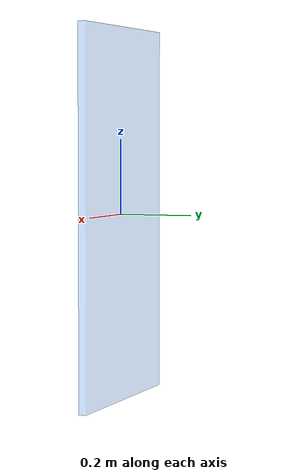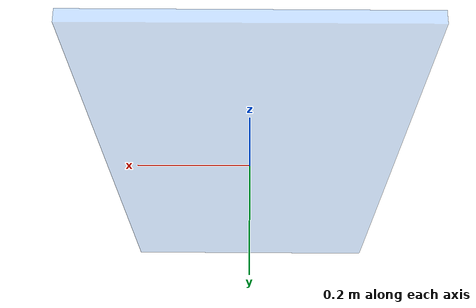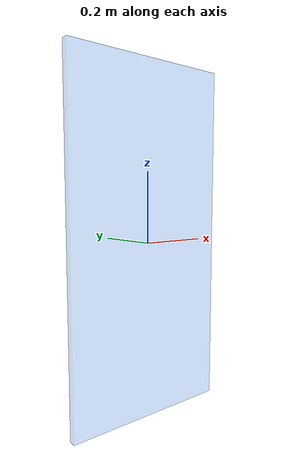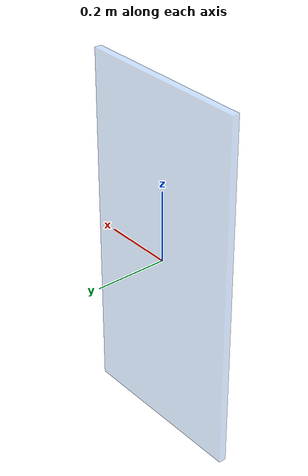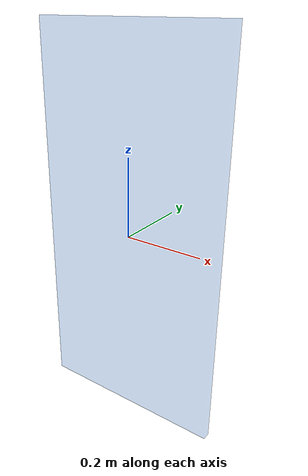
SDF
<?xml version="1.0"?>
<sdf version="1.6">
  <model name="transparent_wall_short">
    <static>true</static>
    <link name="wall">
      <collision name="collision">
        <geometry>
          <box>
            <size>0.5 0.02 1.0</size>
          </box>
        </geometry>
      </collision>
      <visual name="visual">
        <geometry>
          <box>
            <size>0.5 0.02 1.0</size>
          </box>
        </geometry>
        <material>
          <ambient>0.3 0.6 1.0 0.3</ambient>
          <diffuse>0.3 0.6 1.0 0.3</diffuse>
          <specular>0.0 0.0 0.0 0.0</specular>
          <emissive>0.0 0.0 0.0 0.0</emissive>
        </material>
      </visual>
    </link>
  </model>
</sdf>
